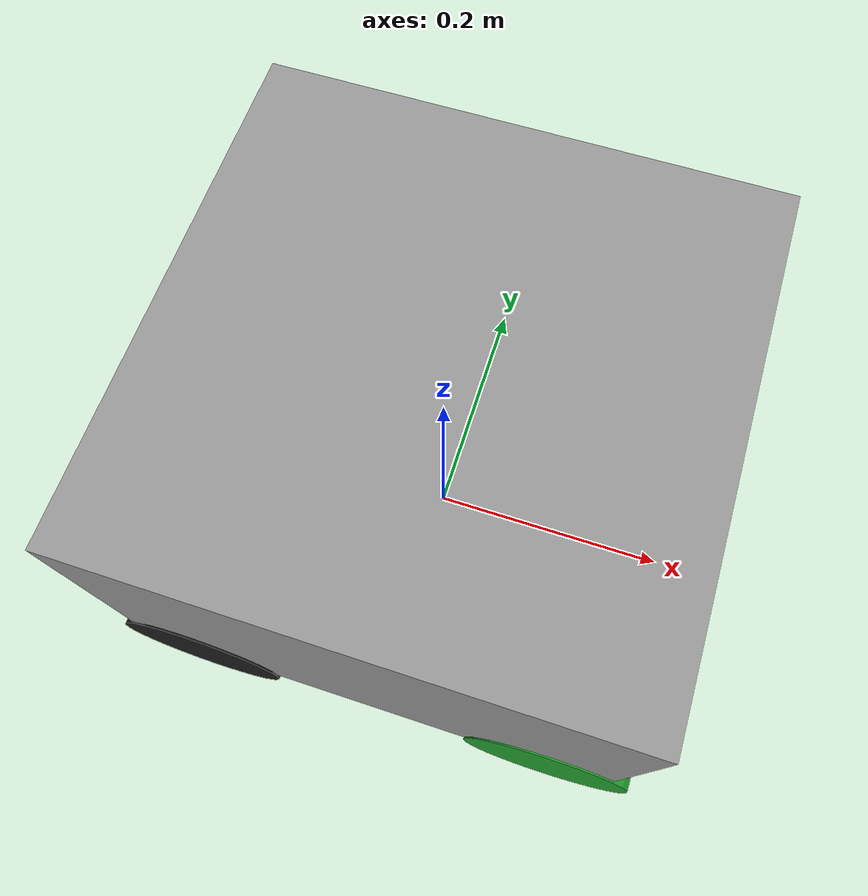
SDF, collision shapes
<?xml version="1.0" ?>
<sdf version='1.6'>
  <model name='r1_rover'>
    <link name='base_link'>
      <pose>0 0 0 0 -0 0</pose>
      <inertial>
        <pose>0 0 0 0 -0 0</pose>
        <mass>20.0</mass>
        <inertia>
          <ixx>0.37083</ixx>
          <ixy>0.0</ixy>
          <ixz>0.0</ixz>
          <iyy>0.37083</iyy>
          <iyz>0.0</iyz>
          <izz>0.53333</izz>
        </inertia>
      </inertial>
      <collision name='odom_fixed_joint_lump__base_link_collision'>
        <pose>0 0 0.15 0 -0 0</pose>
        <geometry>
          <box>
            <size>0.4 0.4 0.25</size>
          </box>
        </geometry>
        <surface>
          <contact>
            <ode/>
          </contact>
          <friction>
            <ode/>
          </friction>
        </surface>
      </collision>
      <visual name='odom_fixed_joint_lump__base_link_visual'>
        <pose>0 0 0 0 -0 0</pose>
        <geometry>
          <mesh>
            <scale>1 1 1</scale>
            <uri>model://r1_rover/meshes/chassis_link.STL</uri>
          </mesh>
        </geometry>
        <material>
          <script>
            <name>Gazebo/Grey</name>
            <uri>file://media/materials/scripts/gazebo.material</uri>
          </script>
        </material>
      </visual>
      <visual name='odom_fixed_joint_lump__top_link_visual_1'>
        <pose>0 0 0.114486 0 -0 0</pose>
        <geometry>
          <mesh>
            <scale>1 1 1</scale>
            <uri>model://r1_rover/meshes/top_link.STL</uri>
          </mesh>
        </geometry>
        <material>
          <script>
            <name>Gazebo/White</name>
            <uri>file://media/materials/scripts/gazebo.material</uri>
          </script>
        </material>
      </visual>
      <visual name='odom_fixed_joint_lump__battery_link_visual_2'>
        <pose>-0.09302 -0.000128 0.114486 0 -0 0</pose>
        <geometry>
          <mesh>
            <scale>1 1 1</scale>
            <uri>model://r1_rover/meshes/battery_link.STL</uri>
          </mesh>
        </geometry>
        <material>
          <script>
            <name>Gazebo/FlatBlack</name>
            <uri>file://media/materials/scripts/gazebo.material</uri>
          </script>
        </material>
      </visual>
      <visual name='odom_fixed_joint_lump__housing_link_visual_3'>
        <pose>0.03473 0 0.114486 0 -0 0</pose>
        <geometry>
          <mesh>
            <scale>1 1 1</scale>
            <uri>model://r1_rover/meshes/housing_link.STL</uri>
          </mesh>
        </geometry>
        <material>
          <script>
            <name>Gazebo/FlatBlack</name>
            <uri>file://media/materials/scripts/gazebo.material</uri>
          </script>
        </material>
      </visual>
      <visual name='odom_fixed_joint_lump__l_antenna_link_visual_4'>
        <pose>-0.1565 0.0762 0.114486 0 -0 0</pose>
        <geometry>
          <mesh>
            <scale>1 1 1</scale>
            <uri>model://r1_rover/meshes/antenna_link.STL</uri>
          </mesh>
        </geometry>
        <material>
          <script>
            <name>Gazebo/FlatBlack</name>
            <uri>file://media/materials/scripts/gazebo.material</uri>
          </script>
        </material>
      </visual>
      <visual name='odom_fixed_joint_lump__r_antenna_link_visual_5'>
        <pose>-0.1565 -0.0762 0.114486 0 -0 0</pose>
        <geometry>
          <mesh>
            <scale>1 1 1</scale>
            <uri>model://r1_rover/meshes/antenna_link.STL</uri>
          </mesh>
        </geometry>
        <material>
          <script>
            <name>Gazebo/FlatBlack</name>
            <uri>file://media/materials/scripts/gazebo.material</uri>
          </script>
        </material>
      </visual>
      <velocity_decay/>
      <velocity_decay/>
      <velocity_decay/>
      <velocity_decay/>
      <velocity_decay/>
      <gravity>1</gravity>
      <velocity_decay/>
    </link>
    <link name='lb_wheel_link'>
      <pose>-0.15 0.16317 0.0215 0 -0 0</pose>
      <inertial>
        <pose>0 0 0 1.57079632679 0 0</pose>
        <mass>0.414</mass>
        <inertia>
          <ixx>0.00068682</ixx>
          <ixy>0</ixy>
          <ixz>0</ixz>
          <iyy>0.00068682</iyy>
          <iyz>0</iyz>
          <izz>0.00097299</izz>
        </inertia>
      </inertial>
      <collision name='lb_wheel_link_collision'>
        <pose>0 0 0 1.57079632679 0 0</pose>
        <geometry>
          <cylinder>
            <radius>0.0686</radius>
            <length>0.0762</length>
          </cylinder>
        </geometry>
        <max_contacts>1</max_contacts>
        <surface>
          <friction>
            <torsional>
              <coefficient>0.25</coefficient>
              <use_patch_radius>1</use_patch_radius>
              <surface_radius>0.0686</surface_radius>
            </torsional>
            <ode>
              <mu>1.0</mu>
              <mu2>0.45</mu2>
              <fdir1>1 0 0</fdir1>
              <slip1>0.0</slip1>
              <slip2>0.0</slip2>
            </ode>
          </friction>
          <bounce>
            <restitution_coefficient>0</restitution_coefficient>
            <threshold>1e6</threshold>
          </bounce>
          <contact>
            <ode>
              <min_depth>0.001</min_depth>
              <max_vel>0.0</max_vel>
              <kp>1.0e6</kp>
              <kd>100.0</kd>
            </ode>
          </contact>
        </surface>
      </collision>
      <visual name='lb_wheel_link_visual'>
        <pose>0 0 0 0 -0 0</pose>
        <geometry>
          <mesh>
            <scale>1 1 1</scale>
            <uri>model://r1_rover/meshes/wheel_link.STL</uri>
          </mesh>
        </geometry>
        <material>
          <script>
            <name>Gazebo/FlatBlack</name>
            <uri>file://media/materials/scripts/gazebo.material</uri>
          </script>
        </material>
      </visual>
      <gravity>1</gravity>
      <velocity_decay/>
    </link>
    <joint name='lb_wheel_joint' type='revolute'>
      <child>lb_wheel_link</child>
      <parent>base_link</parent>
      <axis>
        <xyz>0 1 0</xyz>
        <limit>
          <lower>-1e+16</lower>
          <upper>1e+16</upper>
        </limit>
        <dynamics>
          <spring_reference>0</spring_reference>
          <spring_stiffness>0</spring_stiffness>
        </dynamics>
        <use_parent_model_frame>1</use_parent_model_frame>
      </axis>
    </joint>
    <link name='lf_wheel_link'>
      <pose>0.15 0.16317 0.0215 0 -0 0</pose>
      <inertial>
        <pose>0 0 0 1.57079632679 0 0</pose>
        <mass>0.414</mass>
        <inertia>
          <ixx>0.00068682</ixx>
          <ixy>0</ixy>
          <ixz>0</ixz>
          <iyy>0.00068682</iyy>
          <iyz>0</iyz>
          <izz>0.00097299</izz>
        </inertia>
      </inertial>
      <collision name='lf_wheel_link_collision'>
        <pose>0 0 0 1.57079632679 0 0</pose>
        <geometry>
          <cylinder>
            <radius>0.0686</radius>
            <length>0.0762</length>
          </cylinder>
        </geometry>
        <max_contacts>1</max_contacts>
        <surface>
          <friction>
            <torsional>
              <coefficient>0.25</coefficient>
              <use_patch_radius>1</use_patch_radius>
              <surface_radius>0.0686</surface_radius>
            </torsional>
            <ode>
              <mu>1.0</mu>
              <mu2>0.45</mu2>
              <fdir1>1 0 0</fdir1>
              <slip1>0.0</slip1>
              <slip2>0.0</slip2>
            </ode>
          </friction>
          <bounce>
            <restitution_coefficient>0</restitution_coefficient>
            <threshold>1e6</threshold>
          </bounce>
          <contact>
            <ode>
              <min_depth>0.001</min_depth>
              <max_vel>0.0</max_vel>
              <kp>1.0e6</kp>
              <kd>100.0</kd>
            </ode>
          </contact>
        </surface>
      </collision>
      <visual name='lf_wheel_link_visual'>
        <pose>0 0 0 0 -0 0</pose>
        <geometry>
          <mesh>
            <scale>1 1 1</scale>
            <uri>model://r1_rover/meshes/wheel_link.STL</uri>
          </mesh>
        </geometry>
        <material>
          <script>
            <name>Gazebo/Green</name>
            <uri>file://media/materials/scripts/gazebo.material</uri>
          </script>
        </material>
      </visual>
      <gravity>1</gravity>
      <velocity_decay/>
    </link>
    <joint name='lf_wheel_joint' type='revolute'>
      <child>lf_wheel_link</child>
      <parent>base_link</parent>
      <axis>
        <xyz>0 1 0</xyz>
        <limit>
          <lower>-1e+16</lower>
          <upper>1e+16</upper>
        </limit>
        <dynamics>
          <spring_reference>0</spring_reference>
          <spring_stiffness>0</spring_stiffness>
        </dynamics>
        <use_parent_model_frame>1</use_parent_model_frame>
      </axis>
    </joint>
    <link name='rb_wheel_link'>
      <pose>-0.15 -0.16317 0.0215 0 -0 0</pose>
      <inertial>
        <pose>0 0 0 1.57079632679 0 0</pose>
        <mass>0.414</mass>
        <inertia>
          <ixx>0.00068682</ixx>
          <ixy>0</ixy>
          <ixz>0</ixz>
          <iyy>0.00068682</iyy>
          <iyz>0</iyz>
          <izz>0.00097299</izz>
        </inertia>
      </inertial>
      <collision name='rb_wheel_link_collision'>
        <pose>0 0 0 1.57079632679 0 0</pose>
        <geometry>
          <cylinder>
            <radius>0.0686</radius>
            <length>0.0762</length>
          </cylinder>
        </geometry>
        <max_contacts>1</max_contacts>
        <surface>
          <friction>
            <torsional>
              <coefficient>0.25</coefficient>
              <use_patch_radius>1</use_patch_radius>
              <surface_radius>0.0686</surface_radius>
            </torsional>
            <ode>
              <mu>1.0</mu>
              <mu2>0.45</mu2>
              <fdir1>1 0 0</fdir1>
              <slip1>0.0</slip1>
              <slip2>0.0</slip2>
            </ode>
          </friction>
          <bounce>
            <restitution_coefficient>0</restitution_coefficient>
            <threshold>1e6</threshold>
          </bounce>
          <contact>
            <ode>
              <min_depth>0.001</min_depth>
              <kp>1e8</kp>
            </ode>
          </contact>
        </surface>
      </collision>
      <visual name='rb_wheel_link_visual'>
        <pose>0 0 0 0 -0 0</pose>
        <geometry>
          <mesh>
            <scale>1 1 1</scale>
            <uri>model://r1_rover/meshes/wheel_link.STL</uri>
          </mesh>
        </geometry>
        <material>
          <script>
            <name>Gazebo/FlatBlack</name>
            <uri>file://media/materials/scripts/gazebo.material</uri>
          </script>
        </material>
      </visual>
      <gravity>1</gravity>
      <velocity_decay/>
    </link>
    <joint name='rb_wheel_joint' type='revolute'>
      <child>rb_wheel_link</child>
      <parent>base_link</parent>
      <axis>
        <xyz>0 1 0</xyz>
        <limit>
          <lower>-1e+16</lower>
          <upper>1e+16</upper>
        </limit>
        <dynamics>
          <spring_reference>0</spring_reference>
          <spring_stiffness>0</spring_stiffness>
        </dynamics>
        <use_parent_model_frame>1</use_parent_model_frame>
      </axis>
    </joint>
    <link name='rf_wheel_link'>
      <pose>0.15 -0.16317 0.0215 0 -0 0</pose>
      <inertial>
        <pose>0 0 0 1.57079632679 0 0</pose>
        <mass>0.414</mass>
        <inertia>
          <ixx>0.00068682</ixx>
          <ixy>0</ixy>
          <ixz>0</ixz>
          <iyy>0.00068682</iyy>
          <iyz>0</iyz>
          <izz>0.00097299</izz>
        </inertia>
      </inertial>
      <collision name='rf_wheel_link_collision'>
        <pose>0 0 0 1.57079632679 0 0</pose>
        <geometry>
          <cylinder>
            <radius>0.0686</radius>
            <length>0.0762</length>
          </cylinder>
        </geometry>
        <max_contacts>1</max_contacts>
        <surface>
          <friction>
            <torsional>
              <coefficient>0.25</coefficient>
              <use_patch_radius>1</use_patch_radius>
              <surface_radius>0.0686</surface_radius>
            </torsional>
            <ode>
              <mu>1.0</mu>
              <mu2>0.45</mu2>
              <fdir1>1 0 0</fdir1>
              <slip1>0.0</slip1>
              <slip2>0.0</slip2>
            </ode>
          </friction>
          <bounce>
            <restitution_coefficient>0</restitution_coefficient>
            <threshold>1e6</threshold>
          </bounce>
          <contact>
            <ode>
              <min_depth>0.001</min_depth>
              <max_vel>0.0</max_vel>
              <kp>1.0e6</kp>
              <kd>100.0</kd>
            </ode>
          </contact>
        </surface>
      </collision>
      <visual name='rf_wheel_link_visual'>
        <pose>0 0 0 0 -0 0</pose>
        <geometry>
          <mesh>
            <scale>1 1 1</scale>
            <uri>model://r1_rover/meshes/wheel_link.STL</uri>
          </mesh>
        </geometry>
        <material>
          <script>
            <name>Gazebo/Green</name>
            <uri>file://media/materials/scripts/gazebo.material</uri>
          </script>
        </material>
      </visual>
      <gravity>1</gravity>
      <velocity_decay/>
    </link>
    <joint name='rf_wheel_joint' type='revolute'>
      <child>rf_wheel_link</child>
      <parent>base_link</parent>
      <axis>
        <xyz>0 1 0</xyz>
        <limit>
          <lower>-1e+16</lower>
          <upper>1e+16</upper>
        </limit>
        <dynamics>
          <spring_reference>0</spring_reference>
          <spring_stiffness>0</spring_stiffness>
        </dynamics>
        <use_parent_model_frame>1</use_parent_model_frame>
      </axis>
    </joint>
    <static>0</static>
    <link name='rover/imu_link'>
      <pose>0 0 .2 0 0 0</pose>
      <inertial>
        <pose>0 0 0 0 0 0</pose>
        <mass>0.015</mass>
        <inertia>
          <ixx>1e-05</ixx>
          <ixy>0</ixy>
          <ixz>0</ixz>
          <iyy>1e-05</iyy>
          <iyz>0</iyz>
          <izz>1e-05</izz>
        </inertia>
      </inertial>
      <!--uncomment visual block to see IMU-->
    </link>
    <joint name='rover/imu_joint' type='revolute'>
      <child>rover/imu_link</child>
      <parent>base_link</parent>
      <axis>
        <xyz>1 0 0</xyz>
        <limit>
          <lower>0</lower>
          <upper>0</upper>
          <effort>0</effort>
          <velocity>0</velocity>
        </limit>
        <dynamics>
          <spring_reference>0</spring_reference>
          <spring_stiffness>0</spring_stiffness>
        </dynamics>
        <use_parent_model_frame>1</use_parent_model_frame>
      </axis>
    </joint>
    <!-- GPS插件 -->
    <plugin name="gps_plugin" filename="libgazebo_gps_plugin.so">
	    <robotNamespace></robotNamespace>
	    <gpsNoise>false</gpsNoise>
    </plugin>
    <plugin name='gazebo_imu_plugin' filename='libgazebo_imu_plugin.so'>
      <robotNamespace></robotNamespace>
      <linkName>rover/imu_link</linkName>
      <imuTopic>/imu</imuTopic>
      <gyroscopeNoiseDensity>0.0003394</gyroscopeNoiseDensity>
      <gyroscopeRandomWalk>3.8785e-05</gyroscopeRandomWalk>
      <gyroscopeBiasCorrelationTime>1000.0</gyroscopeBiasCorrelationTime>
      <gyroscopeTurnOnBiasSigma>0.0087</gyroscopeTurnOnBiasSigma>
      <accelerometerNoiseDensity>0.004</accelerometerNoiseDensity>
      <accelerometerRandomWalk>0.006</accelerometerRandomWalk>
      <accelerometerBiasCorrelationTime>300.0</accelerometerBiasCorrelationTime>
      <accelerometerTurnOnBiasSigma>0.196</accelerometerTurnOnBiasSigma>
    </plugin>

    <plugin name='magnetometer_plugin' filename='libgazebo_magnetometer_plugin.so'>
      <robotNamespace/>
      <pubRate>20</pubRate>
      <noiseDensity>0.0004</noiseDensity>
      <randomWalk>6.4e-06</randomWalk>
      <biasCorrelationTime>600</biasCorrelationTime>
      <magTopic>/mag</magTopic>
    </plugin>
    <plugin name='barometer_plugin' filename='libgazebo_barometer_plugin.so'>
      <robotNamespace/>
      <pubRate>10</pubRate>
      <baroTopic>/baro</baroTopic>
    </plugin>
    <plugin name='mavlink_interface' filename='libgazebo_mavlink_interface.so'>
      <robotNamespace></robotNamespace>
      <imuSubTopic>/imu</imuSubTopic>
      <gpsSubTopic>/gps</gpsSubTopic>
      <magSubTopic>/mag</magSubTopic>
      <baroSubTopic>/baro</baroSubTopic>
      <mavlink_addr>INADDR_ANY</mavlink_addr>
      <mavlink_udp_port>14560</mavlink_udp_port>
      <mavlink_tcp_port>4560</mavlink_tcp_port>
      <serialEnabled>false</serialEnabled>
      <serialDevice>/dev/ttyACM0</serialDevice>
      <baudRate>921600</baudRate>
      <qgc_addr>INADDR_ANY</qgc_addr>
      <qgc_udp_port>14550</qgc_udp_port>
      <hil_mode>false</hil_mode>
      <hil_state_level>false</hil_state_level>
      <enable_lockstep>true</enable_lockstep>
      <use_tcp>true</use_tcp>
      <motorSpeedCommandPubTopic>/gazebo/command/motor_speed</motorSpeedCommandPubTopic>
      <control_channels>
        <channel name="left_front_wheel_drive">
          <input_index>0</input_index>
          <input_offset>0</input_offset>
          <input_scaling>40</input_scaling>
          <zero_position_disarmed>0</zero_position_disarmed>
          <zero_position_armed>0</zero_position_armed>
          <joint_control_type>velocity</joint_control_type>
          <joint_name>lf_wheel_joint</joint_name>
          <joint_control_pid>
            <p>0.1</p>
            <i>0</i>
            <d>0</d>
            <iMax>800</iMax>
            <iMin>-800</iMin>
            <cmdMax>1200</cmdMax>
            <cmdMin>-1200</cmdMin>
          </joint_control_pid>
        </channel>
        <channel name="left_back_wheel_drive">
          <input_index>1</input_index>
          <input_offset>0</input_offset>
          <input_scaling>40</input_scaling>
          <zero_position_disarmed>0</zero_position_disarmed>
          <zero_position_armed>0</zero_position_armed>
          <joint_control_type>velocity</joint_control_type>
          <joint_name>lb_wheel_joint</joint_name>
          <joint_control_pid>
            <p>0.1</p>
            <i>0</i>
            <d>0</d>
            <iMax>800</iMax>
            <iMin>-800</iMin>
            <cmdMax>1200</cmdMax>
            <cmdMin>-1200</cmdMin>
          </joint_control_pid>
        </channel>
        <channel name="right_front_wheel_drive">
          <input_index>5</input_index>
          <input_offset>0</input_offset>
          <input_scaling>40</input_scaling>
          <zero_position_disarmed>0</zero_position_disarmed>
          <zero_position_armed>0</zero_position_armed>
          <joint_control_type>velocity</joint_control_type>
          <joint_name>rf_wheel_joint</joint_name>
          <joint_control_pid>
            <p>0.1</p>
            <i>0</i>
            <d>0</d>
            <iMax>800</iMax>
            <iMin>-800</iMin>
            <cmdMax>1200</cmdMax>
            <cmdMin>-1200</cmdMin>
          </joint_control_pid>
        </channel>
        <channel name="right_back_wheel_drive">
          <input_index>6</input_index>
          <input_offset>0</input_offset>
          <input_scaling>40</input_scaling>
          <zero_position_disarmed>0</zero_position_disarmed>
          <zero_position_armed>0</zero_position_armed>
          <joint_control_type>velocity</joint_control_type>
          <joint_name>rb_wheel_joint</joint_name>
          <joint_control_pid>
            <p>0.1</p>
            <i>0</i>
            <d>0</d>
            <iMax>800</iMax>
            <iMin>-800</iMin>
            <cmdMax>1200</cmdMax>
            <cmdMin>-1200</cmdMin>
          </joint_control_pid>
        </channel>
      </control_channels>
    </plugin>
    <!-- plugins: libgazebo_ros_p3d -->
    <!-- 发布真值,模拟vicon系统 -->
    <plugin name="p3d_base_controller" filename="libgazebo_ros_p3d.so">
      <alwaysOn>true</alwaysOn>
      <updateRate>50.0</updateRate>
      <bodyName>base_link</bodyName>
      <topicName>/drone_msg/ground_truth/odometry</topicName>
      <gaussianNoise>0.00</gaussianNoise>
      <frameName>world</frameName>
      <xyzOffsets>0 0 0</xyzOffsets>
      <rpyOffsets>0 0 0</rpyOffsets>
    </plugin>
  </model>
</sdf>
